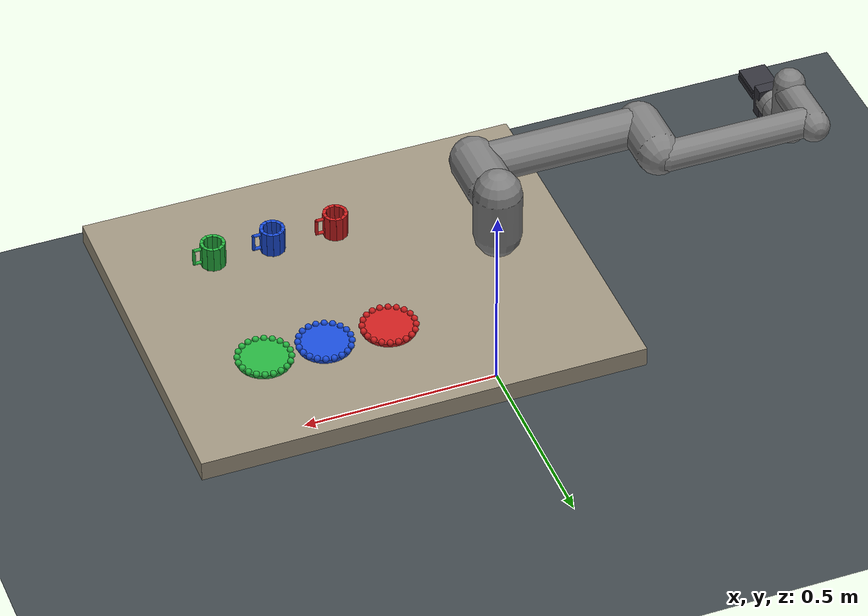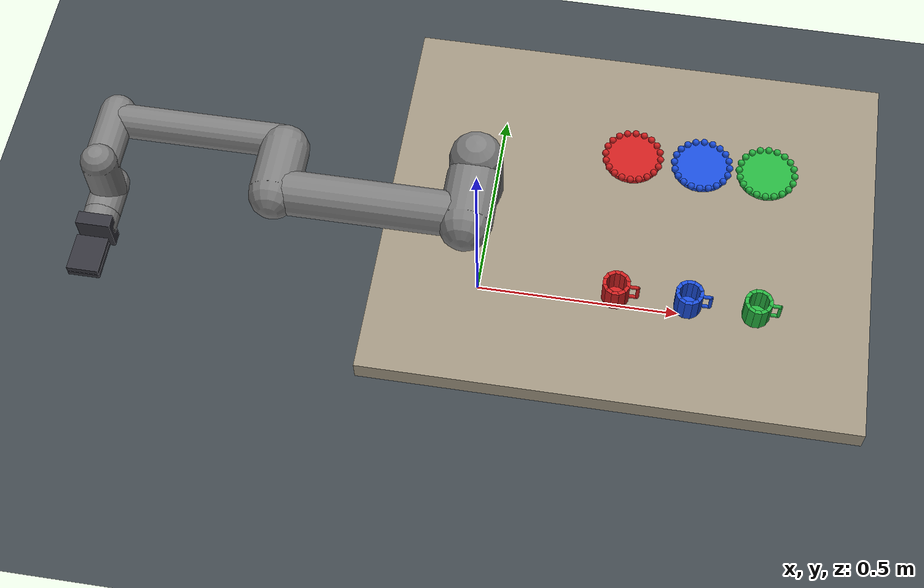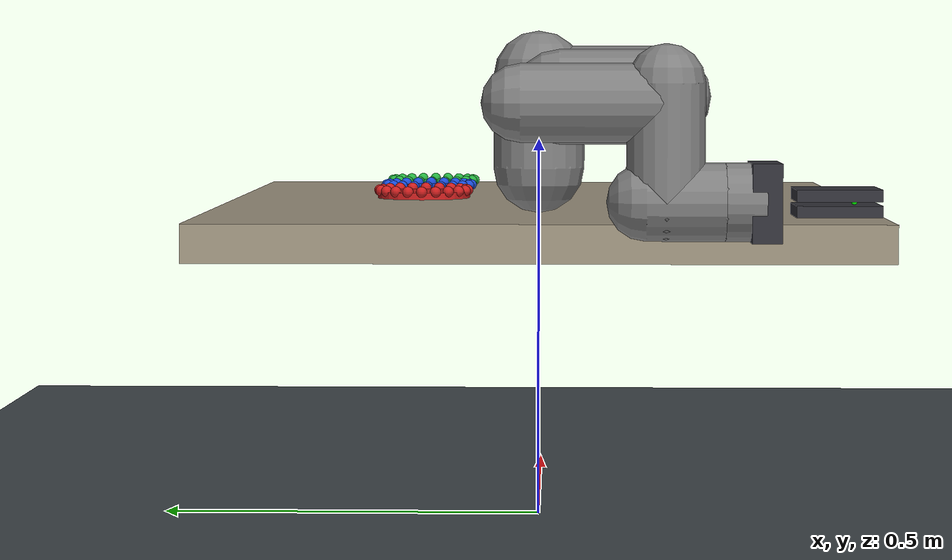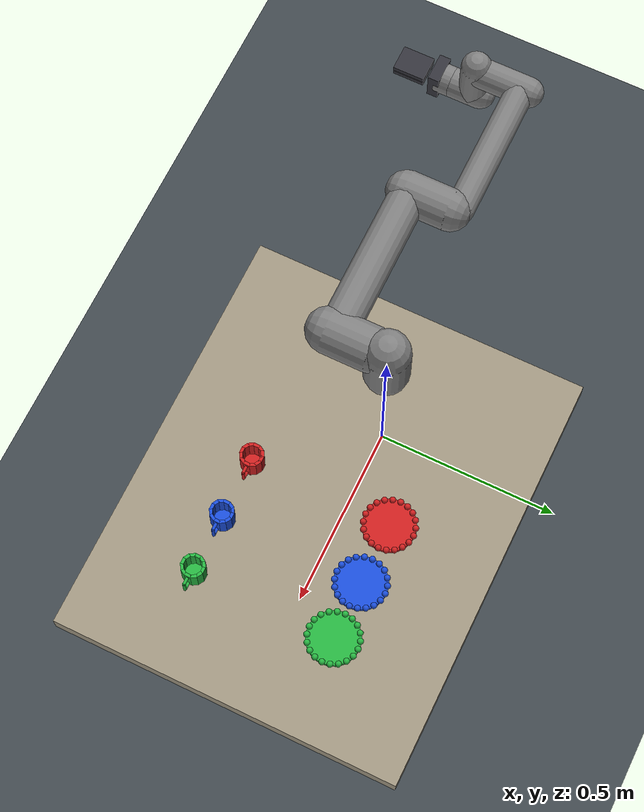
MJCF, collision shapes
<mujoco model="ur5e_sort">
  <compiler angle="radian" meshdir="../assets/universal_robots_ur5e/assets" autolimits="true" />
  <option integrator="implicitfast" timestep=".001" cone="elliptic" />
  <default>
    <default class="ur5e">
      <material specular="0.5" shininess="0.25" />
      <joint axis="0 1 0" range="-6.28319 6.28319" armature="0.1" />
      <general gaintype="fixed" biastype="affine" ctrlrange="-6.2831 6.2831" gainprm="2000" biasprm="0 -2000 -400" forcerange="-150 150" />
      <default class="size3">
        <default class="size3_limited">
          <joint range="-3.1415 3.1415" />
          <general ctrlrange="-3.1415 3.1415" />
        </default>
      </default>
      <default class="size1">
        <general gainprm="500" biasprm="0 -500 -100" forcerange="-28 28" />
      </default>
      <default class="visual">
        <geom type="mesh" contype="0" conaffinity="0" group="2" />
      </default>
      <default class="collision">
        <geom type="capsule" group="3" />
        <default class="eef_collision">
          <geom type="cylinder" />
        </default>
      </default>
      <site size="0.001" rgba="0.5 0.5 0.5 0.3" group="4" />
    </default>
    <default class="tool">
      <geom type="box" friction="1.3 .01 .001" condim="4" rgba=".2 .2 .23 1" />
      <joint type="slide" damping="3" armature=".01" limited="true" range="0 .045" />
    </default>
  </default>
  <asset>
    <material class="ur5e" name="black" rgba="0.033 0.033 0.033 1" />
    <material class="ur5e" name="jointgray" rgba="0.278 0.278 0.278 1" />
    <material class="ur5e" name="linkgray" rgba="0.82 0.82 0.82 1" />
    <material class="ur5e" name="urblue" rgba="0.49 0.678 0.8 1" />
    <mesh file="base_0.obj" />
    <mesh file="base_1.obj" />
    <mesh file="shoulder_0.obj" />
    <mesh file="shoulder_1.obj" />
    <mesh file="shoulder_2.obj" />
    <mesh file="upperarm_0.obj" />
    <mesh file="upperarm_1.obj" />
    <mesh file="upperarm_2.obj" />
    <mesh file="upperarm_3.obj" />
    <mesh file="forearm_0.obj" />
    <mesh file="forearm_1.obj" />
    <mesh file="forearm_2.obj" />
    <mesh file="forearm_3.obj" />
    <mesh file="wrist1_0.obj" />
    <mesh file="wrist1_1.obj" />
    <mesh file="wrist1_2.obj" />
    <mesh file="wrist2_0.obj" />
    <mesh file="wrist2_1.obj" />
    <mesh file="wrist2_2.obj" />
    <mesh file="wrist3.obj" />
  </asset>
  <worldbody>
    <light name="spotlight" mode="targetbodycom" target="wrist_2_link" pos="0 -1 2" />
    <body name="base" quat="0 0 0 -1" childclass="ur5e" pos="0 0 .4">
      <inertial mass="4.0" pos="0 0 0" diaginertia="0.00443333156 0.00443333156 0.0072" />
      <geom mesh="base_0" material="black" class="visual" />
      <geom mesh="base_1" material="jointgray" class="visual" />
      <body name="shoulder_link" pos="0 0 0.163">
        <inertial mass="3.7" pos="0 0 0" diaginertia="0.0102675 0.0102675 0.00666" />
        <joint name="shoulder_pan_joint" class="size3" axis="0 0 1" />
        <geom mesh="shoulder_0" material="urblue" class="visual" />
        <geom mesh="shoulder_1" material="black" class="visual" />
        <geom mesh="shoulder_2" material="jointgray" class="visual" />
        <geom class="collision" size="0.06 0.06" pos="0 0 -0.04" />
        <body name="upper_arm_link" pos="0 0.138 0" quat="1 0 1 0">
          <inertial mass="8.393" pos="0 0 0.2125" diaginertia="0.133886 0.133886 0.0151074" />
          <joint name="shoulder_lift_joint" class="size3" />
          <geom mesh="upperarm_0" material="linkgray" class="visual" />
          <geom mesh="upperarm_1" material="black" class="visual" />
          <geom mesh="upperarm_2" material="jointgray" class="visual" />
          <geom mesh="upperarm_3" material="urblue" class="visual" />
          <geom class="collision" pos="0 -0.04 0" quat="1 1 0 0" size="0.06 0.06" />
          <geom class="collision" size="0.05 0.2" pos="0 0 0.2" />
          <body name="forearm_link" pos="0 -0.131 0.425">
            <inertial mass="2.275" pos="0 0 0.196" diaginertia="0.0311796 0.0311796 0.004095" />
            <joint name="elbow_joint" class="size3_limited" />
            <geom mesh="forearm_0" material="urblue" class="visual" />
            <geom mesh="forearm_1" material="linkgray" class="visual" />
            <geom mesh="forearm_2" material="black" class="visual" />
            <geom mesh="forearm_3" material="jointgray" class="visual" />
            <geom class="collision" pos="0 0.08 0" quat="1 1 0 0" size="0.055 0.06" />
            <geom class="collision" size="0.038 0.19" pos="0 0 0.2" />
            <body name="wrist_1_link" pos="0 0 0.392" quat="1 0 1 0">
              <inertial mass="1.219" pos="0 0.127 0" diaginertia="0.0025599 0.0025599 0.0021942" />
              <joint name="wrist_1_joint" class="size1" />
              <geom mesh="wrist1_0" material="black" class="visual" />
              <geom mesh="wrist1_1" material="urblue" class="visual" />
              <geom mesh="wrist1_2" material="jointgray" class="visual" />
              <geom class="collision" pos="0 0.05 0" quat="1 1 0 0" size="0.04 0.07" />
              <body name="wrist_2_link" pos="0 0.127 0">
                <inertial mass="1.219" pos="0 0 0.1" diaginertia="0.0025599 0.0025599 0.0021942" />
                <joint name="wrist_2_joint" axis="0 0 1" class="size1" />
                <geom mesh="wrist2_0" material="black" class="visual" />
                <geom mesh="wrist2_1" material="urblue" class="visual" />
                <geom mesh="wrist2_2" material="jointgray" class="visual" />
                <geom class="collision" size="0.04 0.06" pos="0 0 0.04" />
                <geom class="collision" pos="0 0.02 0.1" quat="1 1 0 0" size="0.04 0.04" />
                <body name="wrist_3_link" pos="0 0 0.1">
                  <inertial mass="0.1889" pos="0 0.0771683 0" quat="1 0 0 1" diaginertia="0.000132134 9.90863e-05 9.90863e-05" />
                  <joint name="wrist_3_joint" class="size1" />
                  <geom material="linkgray" mesh="wrist3" class="visual" />
                  <geom class="eef_collision" pos="0 0.08 0" quat="1 1 0 0" size="0.04 0.02" />
                  <site name="attachment_site" pos="0 0.1 0" quat="-1 1 0 0" />
                  <body name="tool" pos="0 0.1 0" quat="-1 1 0 0" childclass="tool">
                    <geom name="palm" size=".038 .04 .015" mass=".15" />
                    <site name="grasp" pos="0 0 .09" size=".003" rgba="0 1 0 1" />
                    <camera name="wrist" pos=".06 0 .01" xyaxes="0 -1 0 1 0 0" fovy="75" />
                    <body name="left_finger" pos="0 0.008 0">
                      <joint name="left_jaw" axis="0 1 0" />
                      <geom name="left_pad" pos="0 0 .072" size=".035 .006 .043" mass=".05" />
                    </body>
                    <body name="right_finger" pos="0 -0.008 0">
                      <joint name="right_jaw" axis="0 -1 0" />
                      <geom name="right_pad" pos="0 0 .072" size=".035 .006 .043" mass=".05" />
                    </body>
                  </body>
                </body>
              </body>
            </body>
          </body>
        </body>
      </body>
    </body>
    <geom name="floor" type="plane" size="2 2 .1" rgba=".25 .28 .3 1" />
    <body name="table" pos=".35 0 .375">
      <geom name="table_top" type="box" size=".55 .45 .025" rgba=".62 .58 .50 1" friction="1 .01 .001" />
    </body>
    <light name="key_light" pos="0 -1 2" dir=".2 .3 -1" diffuse=".85 .85 .85" />
    <camera name="overview" pos="1.25 -1.15 1.35" xyaxes=".75 .66 0 -.34 .39 .86" fovy="48" />
    <body name="cup0" pos="0.34 -0.2 0.438">
      <freejoint name="cup0_free" />
      <geom name="cup0_bottom" type="cylinder" size=".027 .004" pos="0 0 -.03" mass=".03" rgba="0.8 0.12 0.12 1" friction="1.2 .01 .001" />
      <geom name="cup0_wall0" type="box" size=".004 .008 .032" pos="0.026 0 0" euler="0 0 0.0" mass=".004" rgba="0.8 0.12 0.12 1" friction="1.2 .01 .001" />
      <geom name="cup0_wall1" type="box" size=".004 .008 .032" pos="0.02251666 0.013 0" euler="0 0 0.5235987755982988" mass=".004" rgba="0.8 0.12 0.12 1" friction="1.2 .01 .001" />
      <geom name="cup0_wall2" type="box" size=".004 .008 .032" pos="0.013 0.02251666 0" euler="0 0 1.0471975511965976" mass=".004" rgba="0.8 0.12 0.12 1" friction="1.2 .01 .001" />
      <geom name="cup0_wall3" type="box" size=".004 .008 .032" pos="1.5920408e-18 0.026 0" euler="0 0 1.5707963267948966" mass=".004" rgba="0.8 0.12 0.12 1" friction="1.2 .01 .001" />
      <geom name="cup0_wall4" type="box" size=".004 .008 .032" pos="-0.013 0.02251666 0" euler="0 0 2.0943951023931953" mass=".004" rgba="0.8 0.12 0.12 1" friction="1.2 .01 .001" />
      <geom name="cup0_wall5" type="box" size=".004 .008 .032" pos="-0.02251666 0.013 0" euler="0 0 2.6179938779914944" mass=".004" rgba="0.8 0.12 0.12 1" friction="1.2 .01 .001" />
      <geom name="cup0_wall6" type="box" size=".004 .008 .032" pos="-0.026 3.1840817e-18 0" euler="0 0 3.141592653589793" mass=".004" rgba="0.8 0.12 0.12 1" friction="1.2 .01 .001" />
      <geom name="cup0_wall7" type="box" size=".004 .008 .032" pos="-0.02251666 -0.013 0" euler="0 0 3.665191429188092" mass=".004" rgba="0.8 0.12 0.12 1" friction="1.2 .01 .001" />
      <geom name="cup0_wall8" type="box" size=".004 .008 .032" pos="-0.013 -0.02251666 0" euler="0 0 4.1887902047863905" mass=".004" rgba="0.8 0.12 0.12 1" friction="1.2 .01 .001" />
      <geom name="cup0_wall9" type="box" size=".004 .008 .032" pos="-4.7761225e-18 -0.026 0" euler="0 0 4.71238898038469" mass=".004" rgba="0.8 0.12 0.12 1" friction="1.2 .01 .001" />
      <geom name="cup0_wall10" type="box" size=".004 .008 .032" pos="0.013 -0.02251666 0" euler="0 0 5.235987755982989" mass=".004" rgba="0.8 0.12 0.12 1" friction="1.2 .01 .001" />
      <geom name="cup0_wall11" type="box" size=".004 .008 .032" pos="0.02251666 -0.013 0" euler="0 0 5.759586531581287" mass=".004" rgba="0.8 0.12 0.12 1" friction="1.2 .01 .001" />
      <geom name="cup0_handle0" type="capsule" fromto="0.03 0 -0.02 0.048 0 -0.02" size=".004" mass=".002" rgba="0.8 0.12 0.12 1" />
      <geom name="cup0_handle1" type="capsule" fromto="0.048 0 -0.02 0.048 0 0.02" size=".004" mass=".002" rgba="0.8 0.12 0.12 1" />
      <geom name="cup0_handle2" type="capsule" fromto="0.048 0 0.02 0.03 0 0.02" size=".004" mass=".002" rgba="0.8 0.12 0.12 1" />
    </body>
    <body name="target0" pos="0.34 0.17 0.414">
      <geom name="plate0" type="cylinder" size=".067 .005" pos="0 0 -.005" rgba="0.8 0.12 0.12 1" />
      <geom name="plate0_rim0" type="sphere" size=".008" pos="0.064 0 0.001" rgba="0.8 0.12 0.12 1" />
      <geom name="plate0_rim1" type="sphere" size=".008" pos="0.060867617 0.019777088 0.001" rgba="0.8 0.12 0.12 1" />
      <geom name="plate0_rim2" type="sphere" size=".008" pos="0.051777088 0.037618256 0.001" rgba="0.8 0.12 0.12 1" />
      <geom name="plate0_rim3" type="sphere" size=".008" pos="0.037618256 0.051777088 0.001" rgba="0.8 0.12 0.12 1" />
      <geom name="plate0_rim4" type="sphere" size=".008" pos="0.019777088 0.060867617 0.001" rgba="0.8 0.12 0.12 1" />
      <geom name="plate0_rim5" type="sphere" size=".008" pos="3.9188698e-18 0.064 0.001" rgba="0.8 0.12 0.12 1" />
      <geom name="plate0_rim6" type="sphere" size=".008" pos="-0.019777088 0.060867617 0.001" rgba="0.8 0.12 0.12 1" />
      <geom name="plate0_rim7" type="sphere" size=".008" pos="-0.037618256 0.051777088 0.001" rgba="0.8 0.12 0.12 1" />
      <geom name="plate0_rim8" type="sphere" size=".008" pos="-0.051777088 0.037618256 0.001" rgba="0.8 0.12 0.12 1" />
      <geom name="plate0_rim9" type="sphere" size=".008" pos="-0.060867617 0.019777088 0.001" rgba="0.8 0.12 0.12 1" />
      <geom name="plate0_rim10" type="sphere" size=".008" pos="-0.064 7.8377395e-18 0.001" rgba="0.8 0.12 0.12 1" />
      <geom name="plate0_rim11" type="sphere" size=".008" pos="-0.060867617 -0.019777088 0.001" rgba="0.8 0.12 0.12 1" />
      <geom name="plate0_rim12" type="sphere" size=".008" pos="-0.051777088 -0.037618256 0.001" rgba="0.8 0.12 0.12 1" />
      <geom name="plate0_rim13" type="sphere" size=".008" pos="-0.037618256 -0.051777088 0.001" rgba="0.8 0.12 0.12 1" />
      <geom name="plate0_rim14" type="sphere" size=".008" pos="-0.019777088 -0.060867617 0.001" rgba="0.8 0.12 0.12 1" />
      <geom name="plate0_rim15" type="sphere" size=".008" pos="-1.1756609e-17 -0.064 0.001" rgba="0.8 0.12 0.12 1" />
      <geom name="plate0_rim16" type="sphere" size=".008" pos="0.019777088 -0.060867617 0.001" rgba="0.8 0.12 0.12 1" />
      <geom name="plate0_rim17" type="sphere" size=".008" pos="0.037618256 -0.051777088 0.001" rgba="0.8 0.12 0.12 1" />
      <geom name="plate0_rim18" type="sphere" size=".008" pos="0.051777088 -0.037618256 0.001" rgba="0.8 0.12 0.12 1" />
      <geom name="plate0_rim19" type="sphere" size=".008" pos="0.060867617 -0.019777088 0.001" rgba="0.8 0.12 0.12 1" />
    </body>
    <body name="cup1" pos="0.5 -0.2 0.438">
      <freejoint name="cup1_free" />
      <geom name="cup1_bottom" type="cylinder" size=".027 .004" pos="0 0 -.03" mass=".03" rgba="0.1 0.3 0.85 1" friction="1.2 .01 .001" />
      <geom name="cup1_wall0" type="box" size=".004 .008 .032" pos="0.026 0 0" euler="0 0 0.0" mass=".004" rgba="0.1 0.3 0.85 1" friction="1.2 .01 .001" />
      <geom name="cup1_wall1" type="box" size=".004 .008 .032" pos="0.02251666 0.013 0" euler="0 0 0.5235987755982988" mass=".004" rgba="0.1 0.3 0.85 1" friction="1.2 .01 .001" />
      <geom name="cup1_wall2" type="box" size=".004 .008 .032" pos="0.013 0.02251666 0" euler="0 0 1.0471975511965976" mass=".004" rgba="0.1 0.3 0.85 1" friction="1.2 .01 .001" />
      <geom name="cup1_wall3" type="box" size=".004 .008 .032" pos="1.5920408e-18 0.026 0" euler="0 0 1.5707963267948966" mass=".004" rgba="0.1 0.3 0.85 1" friction="1.2 .01 .001" />
      <geom name="cup1_wall4" type="box" size=".004 .008 .032" pos="-0.013 0.02251666 0" euler="0 0 2.0943951023931953" mass=".004" rgba="0.1 0.3 0.85 1" friction="1.2 .01 .001" />
      <geom name="cup1_wall5" type="box" size=".004 .008 .032" pos="-0.02251666 0.013 0" euler="0 0 2.6179938779914944" mass=".004" rgba="0.1 0.3 0.85 1" friction="1.2 .01 .001" />
      <geom name="cup1_wall6" type="box" size=".004 .008 .032" pos="-0.026 3.1840817e-18 0" euler="0 0 3.141592653589793" mass=".004" rgba="0.1 0.3 0.85 1" friction="1.2 .01 .001" />
      <geom name="cup1_wall7" type="box" size=".004 .008 .032" pos="-0.02251666 -0.013 0" euler="0 0 3.665191429188092" mass=".004" rgba="0.1 0.3 0.85 1" friction="1.2 .01 .001" />
      <geom name="cup1_wall8" type="box" size=".004 .008 .032" pos="-0.013 -0.02251666 0" euler="0 0 4.1887902047863905" mass=".004" rgba="0.1 0.3 0.85 1" friction="1.2 .01 .001" />
      <geom name="cup1_wall9" type="box" size=".004 .008 .032" pos="-4.7761225e-18 -0.026 0" euler="0 0 4.71238898038469" mass=".004" rgba="0.1 0.3 0.85 1" friction="1.2 .01 .001" />
      <geom name="cup1_wall10" type="box" size=".004 .008 .032" pos="0.013 -0.02251666 0" euler="0 0 5.235987755982989" mass=".004" rgba="0.1 0.3 0.85 1" friction="1.2 .01 .001" />
      <geom name="cup1_wall11" type="box" size=".004 .008 .032" pos="0.02251666 -0.013 0" euler="0 0 5.759586531581287" mass=".004" rgba="0.1 0.3 0.85 1" friction="1.2 .01 .001" />
      <geom name="cup1_handle0" type="capsule" fromto="0.03 0 -0.02 0.048 0 -0.02" size=".004" mass=".002" rgba="0.1 0.3 0.85 1" />
      <geom name="cup1_handle1" type="capsule" fromto="0.048 0 -0.02 0.048 0 0.02" size=".004" mass=".002" rgba="0.1 0.3 0.85 1" />
      <geom name="cup1_handle2" type="capsule" fromto="0.048 0 0.02 0.03 0 0.02" size=".004" mass=".002" rgba="0.1 0.3 0.85 1" />
    </body>
    <body name="target1" pos="0.5 0.17 0.414">
      <geom name="plate1" type="cylinder" size=".067 .005" pos="0 0 -.005" rgba="0.1 0.3 0.85 1" />
      <geom name="plate1_rim0" type="sphere" size=".008" pos="0.064 0 0.001" rgba="0.1 0.3 0.85 1" />
      <geom name="plate1_rim1" type="sphere" size=".008" pos="0.060867617 0.019777088 0.001" rgba="0.1 0.3 0.85 1" />
      <geom name="plate1_rim2" type="sphere" size=".008" pos="0.051777088 0.037618256 0.001" rgba="0.1 0.3 0.85 1" />
      <geom name="plate1_rim3" type="sphere" size=".008" pos="0.037618256 0.051777088 0.001" rgba="0.1 0.3 0.85 1" />
      <geom name="plate1_rim4" type="sphere" size=".008" pos="0.019777088 0.060867617 0.001" rgba="0.1 0.3 0.85 1" />
      <geom name="plate1_rim5" type="sphere" size=".008" pos="3.9188698e-18 0.064 0.001" rgba="0.1 0.3 0.85 1" />
      <geom name="plate1_rim6" type="sphere" size=".008" pos="-0.019777088 0.060867617 0.001" rgba="0.1 0.3 0.85 1" />
      <geom name="plate1_rim7" type="sphere" size=".008" pos="-0.037618256 0.051777088 0.001" rgba="0.1 0.3 0.85 1" />
      <geom name="plate1_rim8" type="sphere" size=".008" pos="-0.051777088 0.037618256 0.001" rgba="0.1 0.3 0.85 1" />
      <geom name="plate1_rim9" type="sphere" size=".008" pos="-0.060867617 0.019777088 0.001" rgba="0.1 0.3 0.85 1" />
      <geom name="plate1_rim10" type="sphere" size=".008" pos="-0.064 7.8377395e-18 0.001" rgba="0.1 0.3 0.85 1" />
      <geom name="plate1_rim11" type="sphere" size=".008" pos="-0.060867617 -0.019777088 0.001" rgba="0.1 0.3 0.85 1" />
      <geom name="plate1_rim12" type="sphere" size=".008" pos="-0.051777088 -0.037618256 0.001" rgba="0.1 0.3 0.85 1" />
      <geom name="plate1_rim13" type="sphere" size=".008" pos="-0.037618256 -0.051777088 0.001" rgba="0.1 0.3 0.85 1" />
      <geom name="plate1_rim14" type="sphere" size=".008" pos="-0.019777088 -0.060867617 0.001" rgba="0.1 0.3 0.85 1" />
      <geom name="plate1_rim15" type="sphere" size=".008" pos="-1.1756609e-17 -0.064 0.001" rgba="0.1 0.3 0.85 1" />
      <geom name="plate1_rim16" type="sphere" size=".008" pos="0.019777088 -0.060867617 0.001" rgba="0.1 0.3 0.85 1" />
      <geom name="plate1_rim17" type="sphere" size=".008" pos="0.037618256 -0.051777088 0.001" rgba="0.1 0.3 0.85 1" />
      <geom name="plate1_rim18" type="sphere" size=".008" pos="0.051777088 -0.037618256 0.001" rgba="0.1 0.3 0.85 1" />
      <geom name="plate1_rim19" type="sphere" size=".008" pos="0.060867617 -0.019777088 0.001" rgba="0.1 0.3 0.85 1" />
    </body>
    <body name="cup2" pos="0.65 -0.2 0.438">
      <freejoint name="cup2_free" />
      <geom name="cup2_bottom" type="cylinder" size=".027 .004" pos="0 0 -.03" mass=".03" rgba="0.15 0.7 0.25 1" friction="1.2 .01 .001" />
      <geom name="cup2_wall0" type="box" size=".004 .008 .032" pos="0.026 0 0" euler="0 0 0.0" mass=".004" rgba="0.15 0.7 0.25 1" friction="1.2 .01 .001" />
      <geom name="cup2_wall1" type="box" size=".004 .008 .032" pos="0.02251666 0.013 0" euler="0 0 0.5235987755982988" mass=".004" rgba="0.15 0.7 0.25 1" friction="1.2 .01 .001" />
      <geom name="cup2_wall2" type="box" size=".004 .008 .032" pos="0.013 0.02251666 0" euler="0 0 1.0471975511965976" mass=".004" rgba="0.15 0.7 0.25 1" friction="1.2 .01 .001" />
      <geom name="cup2_wall3" type="box" size=".004 .008 .032" pos="1.5920408e-18 0.026 0" euler="0 0 1.5707963267948966" mass=".004" rgba="0.15 0.7 0.25 1" friction="1.2 .01 .001" />
      <geom name="cup2_wall4" type="box" size=".004 .008 .032" pos="-0.013 0.02251666 0" euler="0 0 2.0943951023931953" mass=".004" rgba="0.15 0.7 0.25 1" friction="1.2 .01 .001" />
      <geom name="cup2_wall5" type="box" size=".004 .008 .032" pos="-0.02251666 0.013 0" euler="0 0 2.6179938779914944" mass=".004" rgba="0.15 0.7 0.25 1" friction="1.2 .01 .001" />
      <geom name="cup2_wall6" type="box" size=".004 .008 .032" pos="-0.026 3.1840817e-18 0" euler="0 0 3.141592653589793" mass=".004" rgba="0.15 0.7 0.25 1" friction="1.2 .01 .001" />
      <geom name="cup2_wall7" type="box" size=".004 .008 .032" pos="-0.02251666 -0.013 0" euler="0 0 3.665191429188092" mass=".004" rgba="0.15 0.7 0.25 1" friction="1.2 .01 .001" />
      <geom name="cup2_wall8" type="box" size=".004 .008 .032" pos="-0.013 -0.02251666 0" euler="0 0 4.1887902047863905" mass=".004" rgba="0.15 0.7 0.25 1" friction="1.2 .01 .001" />
      <geom name="cup2_wall9" type="box" size=".004 .008 .032" pos="-4.7761225e-18 -0.026 0" euler="0 0 4.71238898038469" mass=".004" rgba="0.15 0.7 0.25 1" friction="1.2 .01 .001" />
      <geom name="cup2_wall10" type="box" size=".004 .008 .032" pos="0.013 -0.02251666 0" euler="0 0 5.235987755982989" mass=".004" rgba="0.15 0.7 0.25 1" friction="1.2 .01 .001" />
      <geom name="cup2_wall11" type="box" size=".004 .008 .032" pos="0.02251666 -0.013 0" euler="0 0 5.759586531581287" mass=".004" rgba="0.15 0.7 0.25 1" friction="1.2 .01 .001" />
      <geom name="cup2_handle0" type="capsule" fromto="0.03 0 -0.02 0.048 0 -0.02" size=".004" mass=".002" rgba="0.15 0.7 0.25 1" />
      <geom name="cup2_handle1" type="capsule" fromto="0.048 0 -0.02 0.048 0 0.02" size=".004" mass=".002" rgba="0.15 0.7 0.25 1" />
      <geom name="cup2_handle2" type="capsule" fromto="0.048 0 0.02 0.03 0 0.02" size=".004" mass=".002" rgba="0.15 0.7 0.25 1" />
    </body>
    <body name="target2" pos="0.65 0.17 0.414">
      <geom name="plate2" type="cylinder" size=".067 .005" pos="0 0 -.005" rgba="0.15 0.7 0.25 1" />
      <geom name="plate2_rim0" type="sphere" size=".008" pos="0.064 0 0.001" rgba="0.15 0.7 0.25 1" />
      <geom name="plate2_rim1" type="sphere" size=".008" pos="0.060867617 0.019777088 0.001" rgba="0.15 0.7 0.25 1" />
      <geom name="plate2_rim2" type="sphere" size=".008" pos="0.051777088 0.037618256 0.001" rgba="0.15 0.7 0.25 1" />
      <geom name="plate2_rim3" type="sphere" size=".008" pos="0.037618256 0.051777088 0.001" rgba="0.15 0.7 0.25 1" />
      <geom name="plate2_rim4" type="sphere" size=".008" pos="0.019777088 0.060867617 0.001" rgba="0.15 0.7 0.25 1" />
      <geom name="plate2_rim5" type="sphere" size=".008" pos="3.9188698e-18 0.064 0.001" rgba="0.15 0.7 0.25 1" />
      <geom name="plate2_rim6" type="sphere" size=".008" pos="-0.019777088 0.060867617 0.001" rgba="0.15 0.7 0.25 1" />
      <geom name="plate2_rim7" type="sphere" size=".008" pos="-0.037618256 0.051777088 0.001" rgba="0.15 0.7 0.25 1" />
      <geom name="plate2_rim8" type="sphere" size=".008" pos="-0.051777088 0.037618256 0.001" rgba="0.15 0.7 0.25 1" />
      <geom name="plate2_rim9" type="sphere" size=".008" pos="-0.060867617 0.019777088 0.001" rgba="0.15 0.7 0.25 1" />
      <geom name="plate2_rim10" type="sphere" size=".008" pos="-0.064 7.8377395e-18 0.001" rgba="0.15 0.7 0.25 1" />
      <geom name="plate2_rim11" type="sphere" size=".008" pos="-0.060867617 -0.019777088 0.001" rgba="0.15 0.7 0.25 1" />
      <geom name="plate2_rim12" type="sphere" size=".008" pos="-0.051777088 -0.037618256 0.001" rgba="0.15 0.7 0.25 1" />
      <geom name="plate2_rim13" type="sphere" size=".008" pos="-0.037618256 -0.051777088 0.001" rgba="0.15 0.7 0.25 1" />
      <geom name="plate2_rim14" type="sphere" size=".008" pos="-0.019777088 -0.060867617 0.001" rgba="0.15 0.7 0.25 1" />
      <geom name="plate2_rim15" type="sphere" size=".008" pos="-1.1756609e-17 -0.064 0.001" rgba="0.15 0.7 0.25 1" />
      <geom name="plate2_rim16" type="sphere" size=".008" pos="0.019777088 -0.060867617 0.001" rgba="0.15 0.7 0.25 1" />
      <geom name="plate2_rim17" type="sphere" size=".008" pos="0.037618256 -0.051777088 0.001" rgba="0.15 0.7 0.25 1" />
      <geom name="plate2_rim18" type="sphere" size=".008" pos="0.051777088 -0.037618256 0.001" rgba="0.15 0.7 0.25 1" />
      <geom name="plate2_rim19" type="sphere" size=".008" pos="0.060867617 -0.019777088 0.001" rgba="0.15 0.7 0.25 1" />
    </body>
  </worldbody>
  <actuator>
    <general class="size3" name="shoulder_pan" joint="shoulder_pan_joint" />
    <general class="size3" name="shoulder_lift" joint="shoulder_lift_joint" />
    <general class="size3_limited" name="elbow" joint="elbow_joint" />
    <general class="size1" name="wrist_1" joint="wrist_1_joint" />
    <general class="size1" name="wrist_2" joint="wrist_2_joint" />
    <general class="size1" name="wrist_3" joint="wrist_3_joint" />
    <position name="left_jaw_motor" joint="left_jaw" kp="150" kv="5" ctrlrange="0 .045" forcerange="-8 8" />
    <position name="right_jaw_motor" joint="right_jaw" kp="150" kv="5" ctrlrange="0 .045" forcerange="-8 8" />
  </actuator>
  <visual>
    <global offwidth="640" offheight="480" />
  </visual>
  <keyframe>
    <key name="home" qpos="-3.4585093 -1.7287966 2.0204557 -1.8624598 -1.5707956 -1.8877131 0.045 0.045 0.34219139 -0.20368341 0.438 1 0 0 0 0.49265558 -0.20773556 0.438 1 0 0 0 0.65501232 -0.19339591 0.438 1 0 0 0" ctrl="-3.4585093 -1.7287966 2.0204557 -1.8624598 -1.5707956 -1.8877131 0.045 0.045" />
  </keyframe>
</mujoco>
